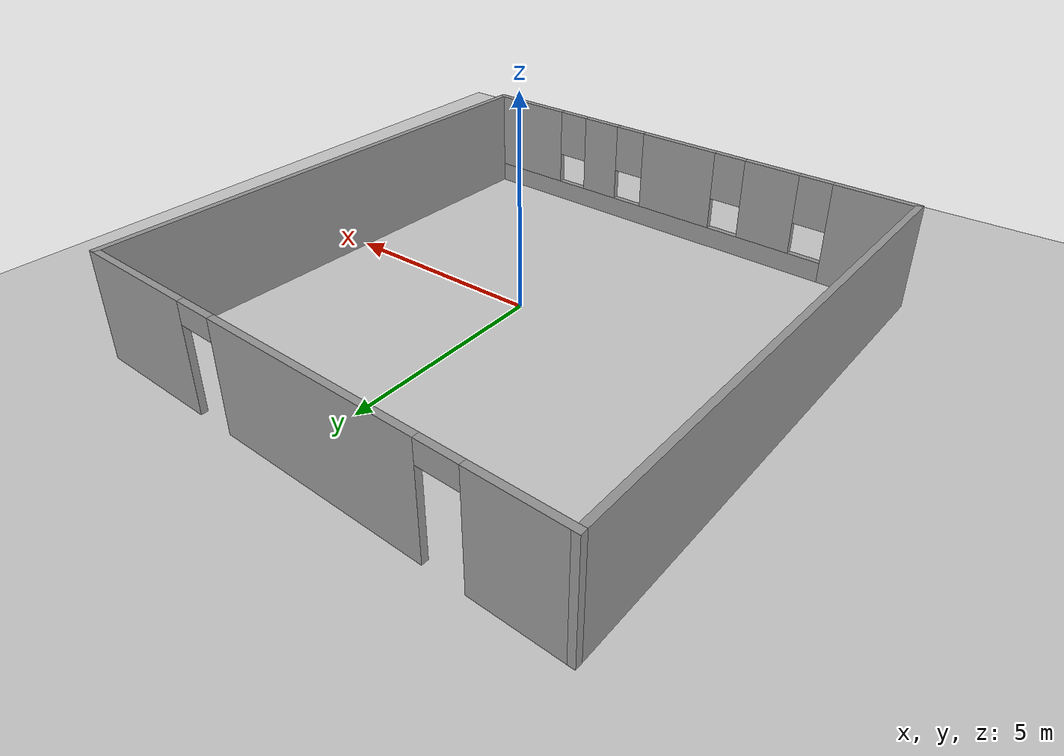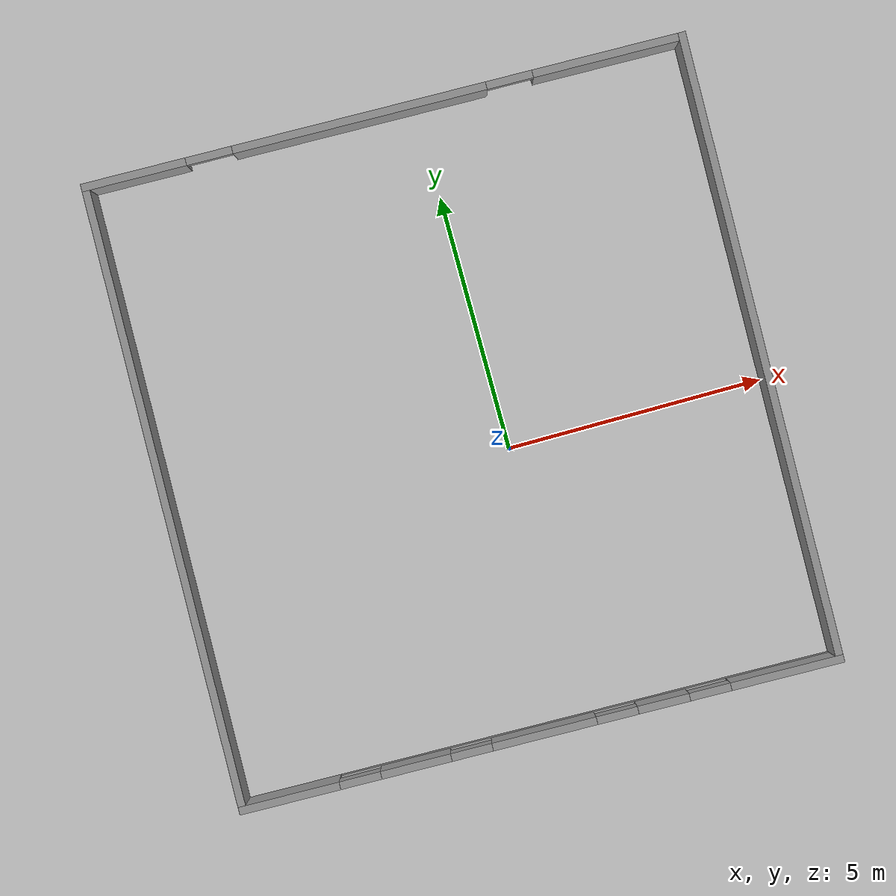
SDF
<sdf version="1.7">
 <world name="default">
  <light name="sun" type="directional">
   <pose>0 0 10 0 -0 0</pose>
   <diffuse>0.8 0.8 0.8 1</diffuse>
   <specular>0.2 0.2 0.2 1</specular>
   <attenuation>
    <range>1000</range>
    <constant>0.9</constant>
    <linear>0.01</linear>
    <quadratic>0.001</quadratic>
   </attenuation>
   <direction>-0.5 0.1 -0.9</direction>
   <spot><inner_angle>0</inner_angle><outer_angle>0</outer_angle><falloff>0</falloff></spot>
  </light>
  <model name="ground_plane">
   <static>1</static>
   <link name="link">
    <collision name="collision">
     <geometry><plane><normal>0 0 1</normal><size>100 100</size></plane></geometry>
     <surface><friction><ode><mu>100</mu><mu2>50</mu2></ode></friction></surface>
    </collision>
    <visual name="visual">
     <cast_shadows>0</cast_shadows>
     <geometry><plane><normal>0 0 1</normal><size>100 100</size></plane></geometry>
     <material>
      <script><uri>file://media/materials/scripts/gazebo.material</uri><name>Gazebo/Grey</name></script>
     </material>
    </visual>
   </link>
  </model>
  <gravity>0 0 -9.8</gravity>
  <magnetic_field>6e-06 2.3e-05 -4.2e-05</magnetic_field>
  <atmosphere type="adiabatic"/>
  <physics type="ode">
   <max_step_size>0.001</max_step_size>
   <real_time_factor>1</real_time_factor>
   <real_time_update_rate>1000</real_time_update_rate>
  </physics>
  <scene><ambient>0.4 0.4 0.4 1</ambient><background>0.7 0.7 0.7 1</background><shadows>1</shadows></scene>
  <spherical_coordinates>
   <surface_model>EARTH_WGS84</surface_model>
   <latitude_deg>0</latitude_deg>
   <longitude_deg>0</longitude_deg>
   <elevation>0</elevation>
   <heading_deg>0</heading_deg>
  </spherical_coordinates>
  <model name="labroom_1">
   <pose>-0.69355 2.90424 0 0 -0 1.55016</pose>
   <link name="Wall_88">
    <pose>-8.24158 -0 0 0 -0 -1.5708</pose>
    <visual name="Wall_88_Visual_0">
     <pose>-4.89465 0 1.25 0 -0 0</pose>
     <geometry><box><size>1.9607 0.15 2.5</size></box></geometry>
     <material>
      <script><uri>file://media/materials/scripts/gazebo.material</uri><name>Gazebo/Grey</name></script>
      <ambient>1 1 1 1</ambient>
     </material>
     <meta><layer>0</layer></meta>
    </visual>
    <collision name="Wall_88_Collision_0">
     <geometry><box><size>1.9607 0.15 2.5</size></box></geometry>
     <pose>-4.89465 0 1.25 0 -0 0</pose>
    </collision>
    <visual name="Wall_88_Visual_1">
     <pose>0.980349 0 0.25 0 -0 0</pose>
     <geometry><box><size>9.7893 0.15 0.5</size></box></geometry>
     <material>
      <script><uri>file://media/materials/scripts/gazebo.material</uri><name>Gazebo/Grey</name></script>
      <ambient>1 1 1 1</ambient>
     </material>
     <meta><layer>0</layer></meta>
    </visual>
    <collision name="Wall_88_Collision_1">
     <geometry><box><size>9.7893 0.15 0.5</size></box></geometry>
     <pose>0.980349 0 0.25 0 -0 0</pose>
    </collision>
    <visual name="Wall_88_Visual_2">
     <pose>-2.4316 0 1.5 0 -0 0</pose>
     <geometry><box><size>1.3654 0.15 2</size></box></geometry>
     <material>
      <script><uri>file://media/materials/scripts/gazebo.material</uri><name>Gazebo/Grey</name></script>
      <ambient>1 1 1 1</ambient>
     </material>
     <meta><layer>0</layer></meta>
    </visual>
    <collision name="Wall_88_Collision_2">
     <geometry><box><size>1.3654 0.15 2</size></box></geometry>
     <pose>-2.4316 0 1.5 0 -0 0</pose>
    </collision>
    <visual name="Wall_88_Visual_3">
     <pose>0.064618 0 1.5 0 -0 0</pose>
     <geometry><box><size>2.02705 0.15 2</size></box></geometry>
     <material>
      <script><uri>file://media/materials/scripts/gazebo.material</uri><name>Gazebo/Grey</name></script>
      <ambient>1 1 1 1</ambient>
     </material>
     <meta><layer>0</layer></meta>
    </visual>
    <collision name="Wall_88_Collision_3">
     <geometry><box><size>2.02705 0.15 2</size></box></geometry>
     <pose>0.064618 0 1.5 0 -0 0</pose>
    </collision>
    <visual name="Wall_88_Visual_4">
     <pose>2.38039 0 1.5 0 -0 0</pose>
     <geometry><box><size>1.0045 0.15 2</size></box></geometry>
     <material>
      <script><uri>file://media/materials/scripts/gazebo.material</uri><name>Gazebo/Grey</name></script>
      <ambient>1 1 1 1</ambient>
     </material>
     <meta><layer>0</layer></meta>
    </visual>
    <collision name="Wall_88_Collision_4">
     <geometry><box><size>1.0045 0.15 2</size></box></geometry>
     <pose>2.38039 0 1.5 0 -0 0</pose>
    </collision>
    <visual name="Wall_88_Visual_5">
     <pose>4.77882 0 1.5 0 -0 0</pose>
     <geometry><box><size>2.19236 0.15 2</size></box></geometry>
     <material>
      <script><uri>file://media/materials/scripts/gazebo.material</uri><name>Gazebo/Grey</name></script>
      <ambient>1 1 1 1</ambient>
     </material>
     <meta><layer>0</layer></meta>
    </visual>
    <collision name="Wall_88_Collision_5">
     <geometry><box><size>2.19236 0.15 2</size></box></geometry>
     <pose>4.77882 0 1.5 0 -0 0</pose>
    </collision>
    <visual name="Wall_88_Visual_6">
     <pose>-3.5143 0 1.9 0 -0 0</pose>
     <geometry><box><size>0.8 0.15 1.2</size></box></geometry>
     <material>
      <script><uri>file://media/materials/scripts/gazebo.material</uri><name>Gazebo/Grey</name></script>
      <ambient>1 1 1 1</ambient>
     </material>
     <meta><layer>0</layer></meta>
    </visual>
    <collision name="Wall_88_Collision_6">
     <geometry><box><size>0.8 0.15 1.2</size></box></geometry>
     <pose>-3.5143 0 1.9 0 -0 0</pose>
    </collision>
    <visual name="Wall_88_Visual_7">
     <pose>-1.34891 0 1.9 0 -0 0</pose>
     <geometry><box><size>0.8 0.15 1.2</size></box></geometry>
     <material>
      <script><uri>file://media/materials/scripts/gazebo.material</uri><name>Gazebo/Grey</name></script>
      <ambient>1 1 1 1</ambient>
     </material>
     <meta><layer>0</layer></meta>
    </visual>
    <collision name="Wall_88_Collision_7">
     <geometry><box><size>0.8 0.15 1.2</size></box></geometry>
     <pose>-1.34891 0 1.9 0 -0 0</pose>
    </collision>
    <visual name="Wall_88_Visual_8">
     <pose>1.47814 0 1.9 0 -0 0</pose>
     <geometry><box><size>0.8 0.15 1.2</size></box></geometry>
     <material>
      <script><uri>file://media/materials/scripts/gazebo.material</uri><name>Gazebo/Grey</name></script>
      <ambient>1 1 1 1</ambient>
     </material>
     <meta><layer>0</layer></meta>
    </visual>
    <collision name="Wall_88_Collision_8">
     <geometry><box><size>0.8 0.15 1.2</size></box></geometry>
     <pose>1.47814 0 1.9 0 -0 0</pose>
    </collision>
    <visual name="Wall_88_Visual_9">
     <pose>3.28264 0 1.9 0 -0 0</pose>
     <geometry><box><size>0.8 0.15 1.2</size></box></geometry>
     <material>
      <script><uri>file://media/materials/scripts/gazebo.material</uri><name>Gazebo/Grey</name></script>
      <ambient>1 1 1 1</ambient>
     </material>
     <meta><layer>0</layer></meta>
    </visual>
    <collision name="Wall_88_Collision_9">
     <geometry><box><size>0.8 0.15 1.2</size></box></geometry>
     <pose>3.28264 0 1.9 0 -0 0</pose>
    </collision>
   </link>
   <link name="Wall_89">
    <collision name="Wall_89_Collision">
     <geometry><box><size>12.25 0.15 2.5</size></box></geometry>
     <pose>0 0 1.25 0 -0 0</pose>
    </collision>
    <visual name="Wall_89_Visual">
     <pose>0 0 1.25 0 -0 0</pose>
     <geometry><box><size>12.25 0.15 2.5</size></box></geometry>
     <material>
      <script><uri>file://media/materials/scripts/gazebo.material</uri><name>Gazebo/Grey</name></script>
      <ambient>1 1 1 1</ambient>
     </material>
     <meta><layer>0</layer></meta>
    </visual>
    <pose>-2.19158 -5.8 0 0 -0 0</pose>
   </link>
   <link name="Wall_90">
    <pose>3.85842 -0 0 0 -0 1.5708</pose>
    <visual name="Wall_90_Visual_0">
     <pose>-4.38277 0 1.25 0 -0 0</pose>
     <geometry><box><size>2.98446 0.15 2.5</size></box></geometry>
     <material>
      <script><uri>file://media/materials/scripts/gazebo.material</uri><name>Gazebo/Grey</name></script>
      <ambient>1 1 1 1</ambient>
     </material>
     <meta><layer>0</layer></meta>
    </visual>
    <collision name="Wall_90_Collision_0">
     <geometry><box><size>2.98446 0.15 2.5</size></box></geometry>
     <pose>-4.38277 0 1.25 0 -0 0</pose>
    </collision>
    <visual name="Wall_90_Visual_1">
     <pose>0.476731 0 1.25 0 -0 0</pose>
     <geometry><box><size>4.93454 0.15 2.5</size></box></geometry>
     <material>
      <script><uri>file://media/materials/scripts/gazebo.material</uri><name>Gazebo/Grey</name></script>
      <ambient>1 1 1 1</ambient>
     </material>
     <meta><layer>0</layer></meta>
    </visual>
    <collision name="Wall_90_Collision_1">
     <geometry><box><size>4.93454 0.15 2.5</size></box></geometry>
     <pose>0.476731 0 1.25 0 -0 0</pose>
    </collision>
    <visual name="Wall_90_Visual_2">
     <pose>4.8595 0 1.25 0 -0 0</pose>
     <geometry><box><size>2.031 0.15 2.5</size></box></geometry>
     <material>
      <script><uri>file://media/materials/scripts/gazebo.material</uri><name>Gazebo/Grey</name></script>
      <ambient>1 1 1 1</ambient>
     </material>
     <meta><layer>0</layer></meta>
    </visual>
    <collision name="Wall_90_Collision_2">
     <geometry><box><size>2.031 0.15 2.5</size></box></geometry>
     <pose>4.8595 0 1.25 0 -0 0</pose>
    </collision>
    <visual name="Wall_90_Visual_3">
     <pose>-2.44054 0 2.25 0 -0 0</pose>
     <geometry><box><size>0.9 0.15 0.5</size></box></geometry>
     <material>
      <script><uri>file://media/materials/scripts/gazebo.material</uri><name>Gazebo/Grey</name></script>
      <ambient>1 1 1 1</ambient>
     </material>
     <meta><layer>0</layer></meta>
    </visual>
    <collision name="Wall_90_Collision_3">
     <geometry><box><size>0.9 0.15 0.5</size></box></geometry>
     <pose>-2.44054 0 2.25 0 -0 0</pose>
    </collision>
    <visual name="Wall_90_Visual_4">
     <pose>3.394 0 2.25 0 -0 0</pose>
     <geometry><box><size>0.9 0.15 0.5</size></box></geometry>
     <material>
      <script><uri>file://media/materials/scripts/gazebo.material</uri><name>Gazebo/Grey</name></script>
      <ambient>1 1 1 1</ambient>
     </material>
     <meta><layer>0</layer></meta>
    </visual>
    <collision name="Wall_90_Collision_4">
     <geometry><box><size>0.9 0.15 0.5</size></box></geometry>
     <pose>3.394 0 2.25 0 -0 0</pose>
    </collision>
   </link>
   <link name="Wall_91">
    <collision name="Wall_91_Collision">
     <geometry><box><size>12.25 0.15 2.5</size></box></geometry>
     <pose>0 0 1.25 0 -0 0</pose>
    </collision>
    <visual name="Wall_91_Visual">
     <pose>0 0 1.25 0 -0 0</pose>
     <geometry><box><size>12.25 0.15 2.5</size></box></geometry>
     <material>
      <script><uri>file://media/materials/scripts/gazebo.material</uri><name>Gazebo/Grey</name></script>
      <ambient>1 1 1 1</ambient>
     </material>
     <meta><layer>0</layer></meta>
    </visual>
    <pose>-2.19158 5.8 0 0 -0 3.14159</pose>
   </link>
   <static>1</static>
  </model>
 </world>
</sdf>
